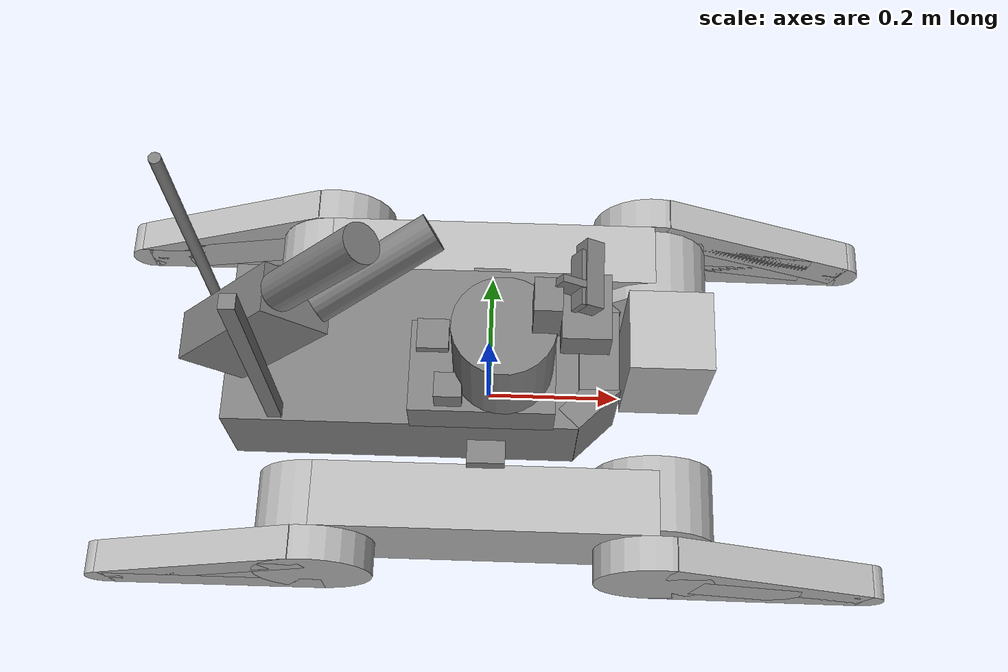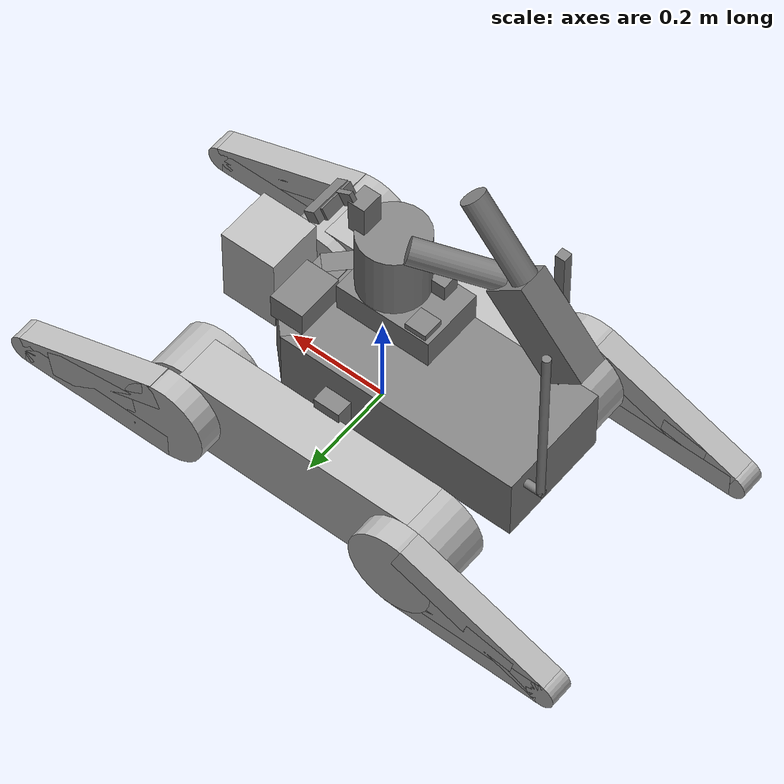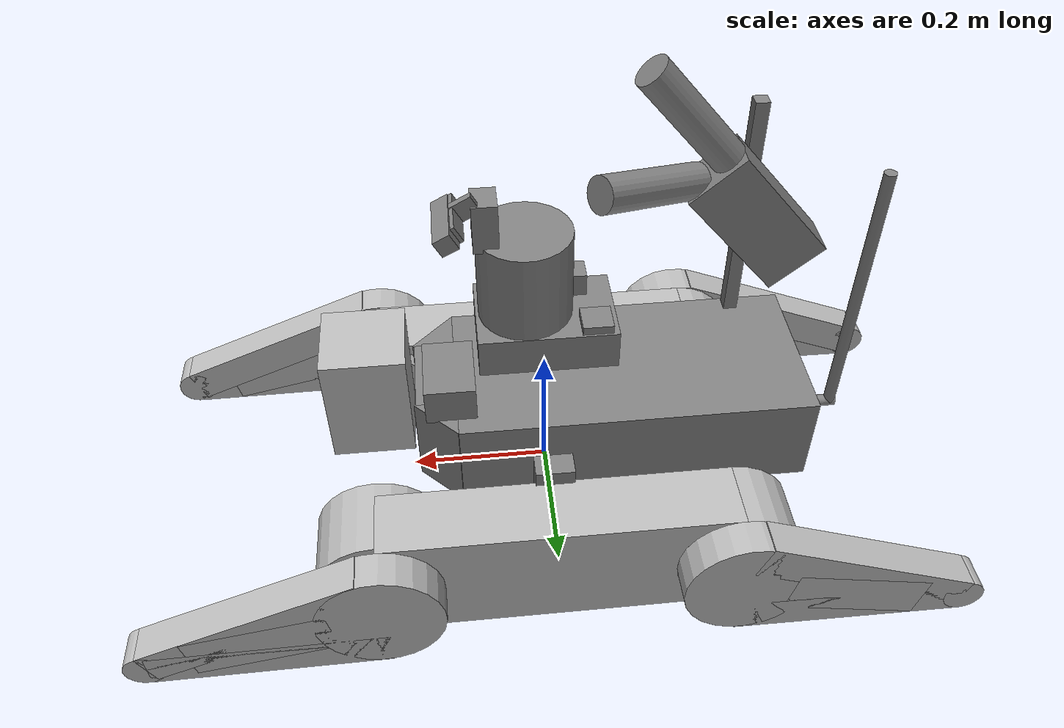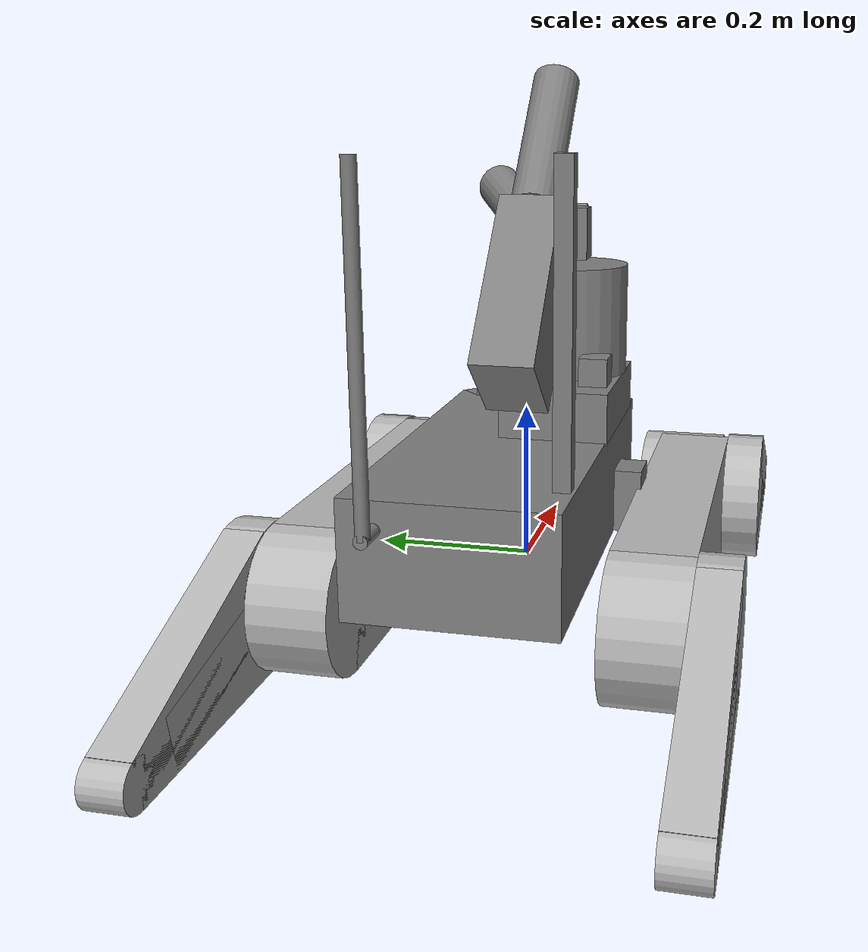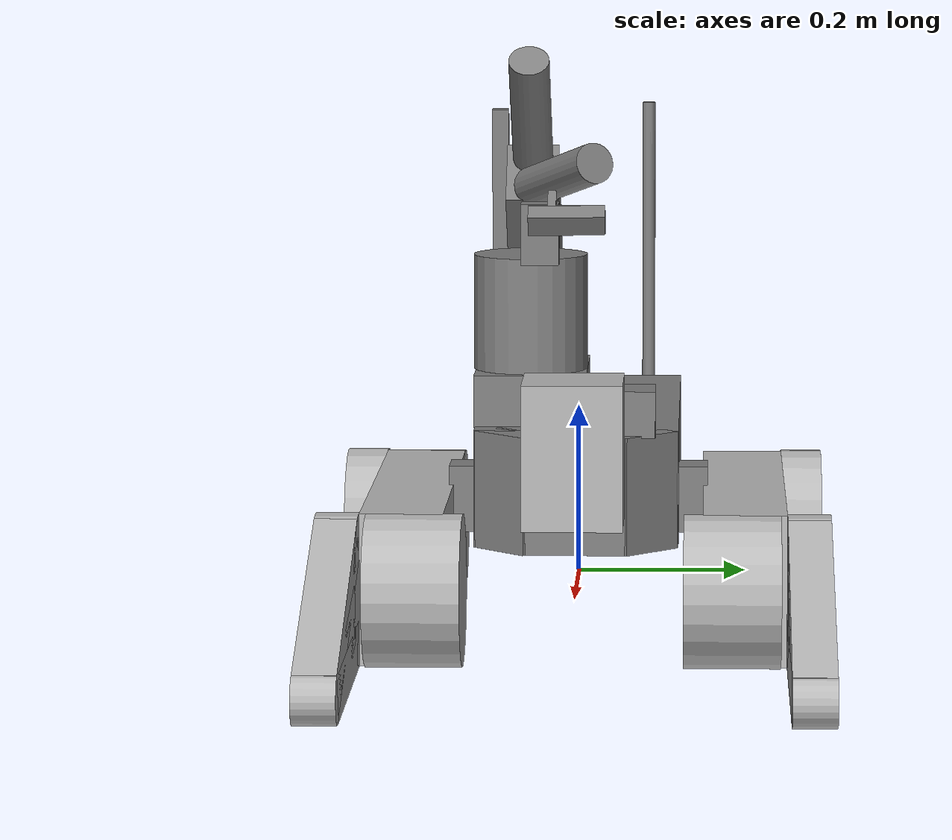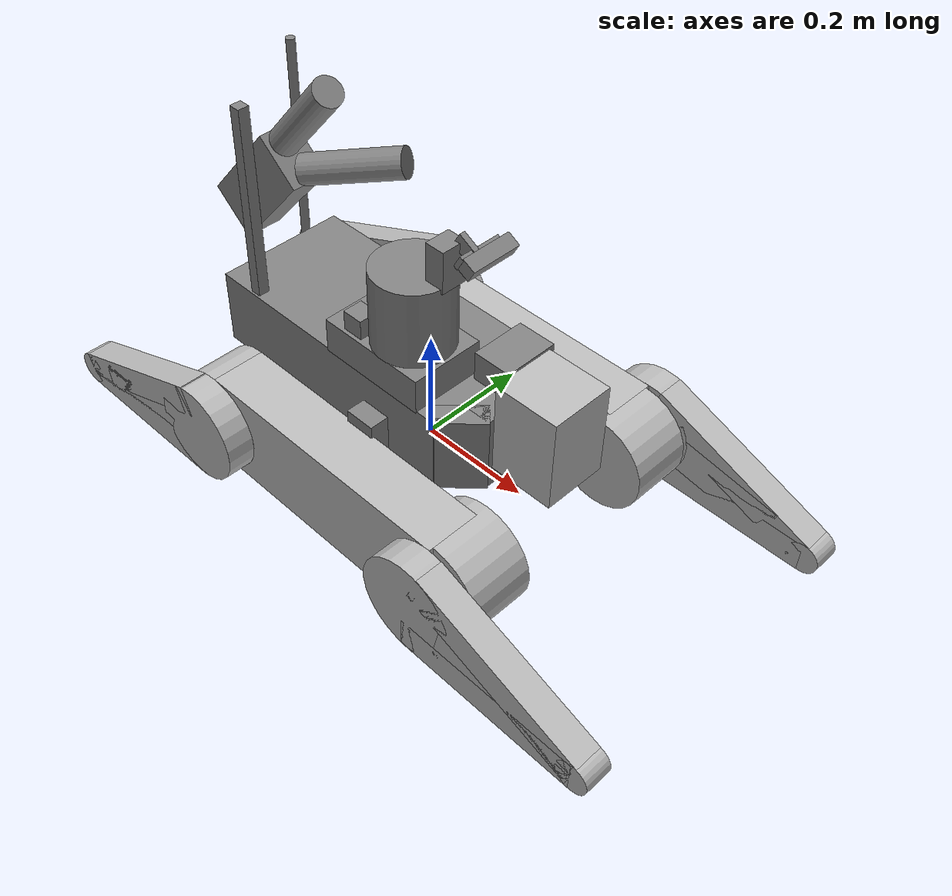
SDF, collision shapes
<?xml version='1.0' encoding='utf-8'?>
<sdf version="1.6">
    <model name="ctu_cras_norlab_absolem_sensor_config_1">
        <link name="base_link">
            <inertial>
                <pose>-0.062088 -0.006779 0.166362 0 -0 0</pose>
                <mass>22.4783</mass>
                <inertia>
                    <ixx>0.178253</ixx>
                    <ixy>0.0177326</ixy>
                    <ixz>-0.0781139</ixz>
                    <iyy>0.4196</iyy>
                    <iyz>0.0158494</iyz>
                    <izz>0.33554</izz>
                </inertia>
            </inertial>
            <collision name="base_link_collision">
                <pose>-0.122 0 0.118 0 -0 0</pose>
                <geometry>
                    <box>
                        <size>0.50017 0.24093 0.139</size>
                    </box>
                </geometry>
            </collision>
            <collision name="base_link_collision_1">
                <pose>0.157 0 0.118 0 -0 0</pose>
                <geometry>
                    <box>
                        <size>0.056 0.12093 0.139</size>
                    </box>
                </geometry>
            </collision>
            <collision name="base_link_collision_2">
                <pose>0.144 -0.076 0.118 0 -0 0.785398</pose>
                <geometry>
                    <box>
                        <size>0.083 0.04 0.139</size>
                    </box>
                </geometry>
            </collision>
            <collision name="base_link_collision_3">
                <pose>0.144 0.076 0.118 0 0 -0.785398</pose>
                <geometry>
                    <box>
                        <size>0.083 0.04 0.139</size>
                    </box>
                </geometry>
            </collision>
            <collision name="base_link_collision_4">
                <pose>0 0.135 0.09 0 -0 0</pose>
                <geometry>
                    <box>
                        <size>0.055 0.04 0.08</size>
                    </box>
                </geometry>
            </collision>
            <collision name="base_link_collision_5">
                <pose>0 0.155 0.013 0 -0 0</pose>
                <geometry>
                    <box>
                        <size>0.055 0.02 0.075</size>
                    </box>
                </geometry>
            </collision>
            <collision name="base_link_collision_6">
                <pose>0 -0.135 0.09 0 -0 0</pose>
                <geometry>
                    <box>
                        <size>0.055 0.04 0.08</size>
                    </box>
                </geometry>
            </collision>
            <collision name="base_link_collision_7">
                <pose>0 -0.155 0.013 0 -0 0</pose>
                <geometry>
                    <box>
                        <size>0.055 0.02 0.075</size>
                    </box>
                </geometry>
            </collision>
            <collision name="base_link_fixed_joint_lump__antenna_collision_8">
                <pose>-0.39064 0.0789 0.1551 0 1.5707963267948966 0</pose>
                <geometry>
                    <cylinder>
                        <length>0.03718</length>
                        <radius>0.008</radius>
                    </cylinder>
                </geometry>
            </collision>
            <collision name="base_link_fixed_joint_lump__antenna_collision_9">
                <pose>-0.402 0.0789 0.34563 0 -0 0</pose>
                <geometry>
                    <cylinder>
                        <length>0.38107</length>
                        <radius>0.008</radius>
                    </cylinder>
                </geometry>
            </collision>
            <collision name="base_link_fixed_joint_lump__battery_collision_10">
                <pose>-0.2836 -0.0221 0.1132 0 -0 0</pose>
                <geometry>
                    <box>
                        <size>0.145 0.135 0.082</size>
                    </box>
                </geometry>
            </collision>
            <collision name="base_link_fixed_joint_lump__jetson_collision_11">
                <pose>0.136 0.0435 0.2125 0 -0 0</pose>
                <geometry>
                    <box>
                        <size>0.07 0.1 0.055</size>
                    </box>
                </geometry>
            </collision>
            <collision name="base_link_fixed_joint_lump__rear_sensor_item_collision_12">
                <pose>-0.295 -0.1065 0.36 0 -0 0</pose>
                <geometry>
                    <box>
                        <size>0.02 0.02 0.35</size>
                    </box>
                </geometry>
            </collision>
            <collision name="base_link_fixed_joint_lump__mobilicom_collision_13">
                <pose>-0.295121 -0.064 0.385106 -1.56579 -0.858407 -7.3e-05</pose>
                <geometry>
                    <box>
                        <size>0.2 0.095 0.065</size>
                    </box>
                </geometry>
            </collision>
            <collision name="base_link_fixed_joint_lump__mobilicom_antenna_l_collision_14">
                <pose>-0.139117 -0.02338 0.465445 -1.29704 -0.418237 -1.17028</pose>
                <geometry>
                    <cylinder>
                        <length>0.17</length>
                        <radius>0.025</radius>
                    </cylinder>
                </geometry>
            </collision>
            <collision name="base_link_fixed_joint_lump__mobilicom_antenna_r_collision_15">
                <pose>-0.193116 -0.064558 0.541453 -0.7124 0.007057 -1.5707963267948966</pose>
                <geometry>
                    <cylinder>
                        <length>0.17</length>
                        <radius>0.025</radius>
                    </cylinder>
                </geometry>
            </collision>
            <collision name="base_link_fixed_joint_lump__top_box_collision_16">
                <pose>-0.007 -0.0557 0.2165 0 -0 0</pose>
                <geometry>
                    <box>
                        <size>0.2 0.133 0.06252</size>
                    </box>
                </geometry>
            </collision>
            <collision name="base_link_fixed_joint_lump__top_box_collision_17">
                <pose>-0.07624 -0.01443 0.254 0 -0 0</pose>
                <geometry>
                    <box>
                        <size>0.044 0.044 0.01303</size>
                    </box>
                </geometry>
            </collision>
            <collision name="base_link_fixed_joint_lump__top_box_collision_18">
                <pose>-0.05183 -0.09792 0.26496 0 -0 0</pose>
                <geometry>
                    <box>
                        <size>0.03732 0.03523 0.03489</size>
                    </box>
                </geometry>
            </collision>
            <collision name="base_link_fixed_joint_lump__omnicam_collision_19">
                <pose>0.020991 -0.05685 0.3172 0 0 -0.628319</pose>
                <geometry>
                    <cylinder>
                        <length>0.137</length>
                        <radius>0.068</radius>
                    </cylinder>
                </geometry>
            </collision>
            <collision name="base_link_fixed_joint_lump__realsense_holder_part2_collision_20">
                <pose>0.111811 -0.018928 0.440133 0 0.504467 -0.000319</pose>
                <geometry>
                    <box>
                        <size>0.008 0.075 0.025</size>
                    </box>
                </geometry>
            </collision>
            <collision name="base_link_fixed_joint_lump__realsense_holder_part2_collision_21">
                <pose>0.099551 -0.028924 0.4469 0 0.504467 -0.000319</pose>
                <geometry>
                    <box>
                        <size>0.035 0.01 0.028</size>
                    </box>
                </geometry>
            </collision>
            <collision name="base_link_fixed_joint_lump__realsense_holder_part2_collision_22">
                <pose>0.074085 -0.043916 0.415266 -0 0.004467 -0.000319</pose>
                <geometry>
                    <box>
                        <size>0.035 0.045 0.073</size>
                    </box>
                </geometry>
            </collision>
            <collision name="base_link_fixed_joint_lump__camera_link_collision_23">
                <pose>0.125348 -0.010971 0.43571 0.015 0.499467 -0.000319</pose>
                <geometry>
                    <box>
                        <size>0.02505 0.09 0.025</size>
                    </box>
                </geometry>
            </collision>
            <visual name="base_link_visual">
                <geometry>
                    <mesh>
                        <uri>meshes/body.dae</uri>
                    </mesh>
                </geometry>
            </visual>
            <visual name="base_link_fixed_joint_lump__antenna_visual_1">
                <pose>-0.372 0.0789 0.1551 0 -0 0</pose>
                <geometry>
                    <mesh>
                        <uri>meshes/antenna.dae</uri>
                    </mesh>
                </geometry>
            </visual>
            <visual name="base_link_fixed_joint_lump__battery_visual_2">
                <pose>-0.2836 -0.0221 0.0722 0 -0 0</pose>
                <geometry>
                    <mesh>
                        <uri>meshes/battery.dae</uri>
                    </mesh>
                </geometry>
            </visual>
            <visual name="base_link_fixed_joint_lump__jetson_visual_3">
                <pose>0.136 0.0435 0.2125 0 -0 0</pose>
                <geometry>
                    <box>
                        <size>0.07 0.1 0.055</size>
                    </box>
                </geometry>
            </visual>
            <visual name="base_link_fixed_joint_lump__rear_sensor_item_visual_4">
                <pose>-0.295 -0.1065 0.36 0 -0 0</pose>
                <geometry>
                    <box>
                        <size>0.02 0.02 0.35</size>
                    </box>
                </geometry>
            </visual>
            <visual name="base_link_fixed_joint_lump__mobilicom_visual_5">
                <pose>-0.275459 -0.078002 0.407765 -1.56579 -0.858407 -7.3e-05</pose>
                <geometry>
                    <box>
                        <size>0.12 0.075 0.037</size>
                    </box>
                </geometry>
            </visual>
            <visual name="base_link_fixed_joint_lump__mobilicom_antenna_l_visual_6">
                <pose>-0.139117 -0.02338 0.465445 -1.29704 -0.418237 -1.17028</pose>
                <geometry>
                    <cylinder>
                        <length>0.17</length>
                        <radius>0.015</radius>
                    </cylinder>
                </geometry>
            </visual>
            <visual name="base_link_fixed_joint_lump__mobilicom_antenna_r_visual_7">
                <pose>-0.193116 -0.064558 0.541453 -0.7124 0.007057 -1.5707963267948966</pose>
                <geometry>
                    <cylinder>
                        <length>0.17</length>
                        <radius>0.015</radius>
                    </cylinder>
                </geometry>
            </visual>
            <visual name="base_link_fixed_joint_lump__top_box_visual_8">
                <pose>0.022 -0.0557 0.185 0 -0 0</pose>
                <geometry>
                    <mesh>
                        <uri>meshes/top_box.dae</uri>
                    </mesh>
                </geometry>
            </visual>
            <visual name="base_link_fixed_joint_lump__omnicam_visual_9">
                <pose>0.0243 -0.0574 0.3142 0 0 -0.628319</pose>
                <geometry>
                    <mesh>
                        <uri>meshes/omnicam.dae</uri>
                    </mesh>
                </geometry>
            </visual>
            <visual name="base_link_fixed_joint_lump__realsense_holder_part2_visual_10">
                <pose>0.088136 -0.07392 0.386942 -5e-06 -0.002418 1.57486</pose>
                <geometry>
                    <mesh>
                        <scale>0.001 0.001 0.001</scale>
                        <uri>meshes/d435_holder_combined.stl</uri>
                    </mesh>
                </geometry>
                <material>
                    <diffuse>0.5 0.5 0.5 1</diffuse>
                    <ambient>0.1 0.1 0.1 1</ambient>
                </material>
            </visual>
            <visual name="base_link_fixed_joint_lump__camera_link_visual_11">
                <pose>0.133719 -0.010853 0.422031 2.07031 -0.013167 1.56329</pose>
                <geometry>
                    <mesh>
                        <uri>meshes/realsense_d435.dae</uri>
                    </mesh>
                </geometry>
                <material>
                    <diffuse>0.5 0.5 0.5 1</diffuse>
                    <ambient>0.1 0.1 0.1 1</ambient>
                </material>
            </visual>
            <light name="light_left" type="spot">
                <pose>0 0.13 0.2 1.5707963267948966 1.5707963267948966 0</pose>
                <attenuation>
                    <range>50</range>
                    <linear>0</linear>
                    <constant>0.1</constant>
                    <quadratic>0.0025</quadratic>
                </attenuation>
                <diffuse>0.8 0.8 0.5 1</diffuse>
                <specular>0.8 0.8 0.5 1</specular>
                <spot>
                    <inner_angle>2.8</inner_angle>
                    <outer_angle>2.9</outer_angle>
                    <falloff>1</falloff>
                </spot>
                <direction>1 0 0</direction>
            </light>
            <light name="light_right" type="spot">
                <pose>0 -0.13 0.2 -1.5707963267948966 1.5707963267948966 0</pose>
                <attenuation>
                    <range>50</range>
                    <linear>0</linear>
                    <constant>0.1</constant>
                    <quadratic>0.0025</quadratic>
                </attenuation>
                <diffuse>0.8 0.8 0.5 1</diffuse>
                <specular>0.8 0.8 0.5 1</specular>
                <spot>
                    <inner_angle>2.8</inner_angle>
                    <outer_angle>2.9</outer_angle>
                    <falloff>1</falloff>
                </spot>
                <direction>1 0 0</direction>
            </light>
            <light name="light_front_left" type="spot">
                <pose>0.3 0.13 0.2 2.74889 1.5707963267948966 0</pose>
                <attenuation>
                    <range>30</range>
                    <linear>0</linear>
                    <constant>0.2</constant>
                    <quadratic>0.0025</quadratic>
                </attenuation>
                <diffuse>0.8 0.8 0.5 1</diffuse>
                <specular>0.8 0.8 0.5 1</specular>
                <spot>
                    <inner_angle>1.5</inner_angle>
                    <outer_angle>1.6</outer_angle>
                    <falloff>1</falloff>
                </spot>
                <direction>1 0 0</direction>
            </light>
            <light name="light_front_right" type="spot">
                <pose>0.3 -0.13 0.2 -2.74889 1.5707963267948966 0</pose>
                <attenuation>
                    <range>30</range>
                    <linear>0</linear>
                    <constant>0.2</constant>
                    <quadratic>0.0025</quadratic>
                </attenuation>
                <diffuse>0.8 0.8 0.5 1</diffuse>
                <specular>0.8 0.8 0.5 1</specular>
                <spot>
                    <inner_angle>1.5</inner_angle>
                    <outer_angle>1.6</outer_angle>
                    <falloff>1</falloff>
                </spot>
                <direction>1 0 0</direction>
            </light>
            <light name="light_rear" type="spot">
                <pose>-0.4 0 0.2 0 1.5707963267948966 0</pose>
                <attenuation>
                    <range>30</range>
                    <linear>0</linear>
                    <constant>0.2</constant>
                    <quadratic>0.0025</quadratic>
                </attenuation>
                <diffuse>0.8 0.8 0.5 1</diffuse>
                <specular>0.8 0.8 0.5 1</specular>
                <spot>
                    <inner_angle>1.5</inner_angle>
                    <outer_angle>1.8</outer_angle>
                    <falloff>1</falloff>
                </spot>
                <direction>1 0 0</direction>
            </light>
            <self_collide>0</self_collide>
            <sensor name="imu" type="imu">
                <always_on>1</always_on>
                <update_rate>50</update_rate>
                <imu>
                    <angular_velocity>
                        <x>
                            <noise type="gaussian">
                                <mean>0</mean>
                                <stddev>0.009</stddev>
                                <bias_mean>0.00075</bias_mean>
                                <bias_stddev>0.005</bias_stddev>
                                <dynamic_bias_stddev>2e-05</dynamic_bias_stddev>
                                <dynamic_bias_correlation_time>400</dynamic_bias_correlation_time>
                                <precision>0.00025</precision>
                            </noise>
                        </x>
                        <y>
                            <noise type="gaussian">
                                <mean>0</mean>
                                <stddev>0.009</stddev>
                                <bias_mean>0.00075</bias_mean>
                                <bias_stddev>0.005</bias_stddev>
                                <dynamic_bias_stddev>2e-05</dynamic_bias_stddev>
                                <dynamic_bias_correlation_time>400</dynamic_bias_correlation_time>
                                <precision>0.00025</precision>
                            </noise>
                        </y>
                        <z>
                            <noise type="gaussian">
                                <mean>0</mean>
                                <stddev>0.009</stddev>
                                <bias_mean>0.00075</bias_mean>
                                <bias_stddev>0.005</bias_stddev>
                                <dynamic_bias_stddev>2e-05</dynamic_bias_stddev>
                                <dynamic_bias_correlation_time>400</dynamic_bias_correlation_time>
                                <precision>0.00025</precision>
                            </noise>
                        </z>
                    </angular_velocity>
                    <linear_acceleration>
                        <x>
                            <noise type="gaussian">
                                <mean>0</mean>
                                <stddev>0.021</stddev>
                                <bias_mean>0.05</bias_mean>
                                <bias_stddev>0.0075</bias_stddev>
                                <dynamic_bias_stddev>0.000375</dynamic_bias_stddev>
                                <dynamic_bias_correlation_time>175</dynamic_bias_correlation_time>
                                <precision>0.005</precision>
                            </noise>
                        </x>
                        <y>
                            <noise type="gaussian">
                                <mean>0</mean>
                                <stddev>0.021</stddev>
                                <bias_mean>0.05</bias_mean>
                                <bias_stddev>0.0075</bias_stddev>
                                <dynamic_bias_stddev>0.000375</dynamic_bias_stddev>
                                <dynamic_bias_correlation_time>175</dynamic_bias_correlation_time>
                                <precision>0.005</precision>
                            </noise>
                        </y>
                        <z>
                            <noise type="gaussian">
                                <mean>0</mean>
                                <stddev>0.021</stddev>
                                <bias_mean>0.05</bias_mean>
                                <bias_stddev>0.0075</bias_stddev>
                                <dynamic_bias_stddev>0.000375</dynamic_bias_stddev>
                                <dynamic_bias_correlation_time>175</dynamic_bias_correlation_time>
                                <precision>0.005</precision>
                            </noise>
                        </z>
                    </linear_acceleration>
                    <enable_orientation>0</enable_orientation>
                </imu>
                <pose>0 0 0.15 -3.1415926535897931 -0 0</pose>
            </sensor>
            <sensor name="omnicam_sensor0" type="camera">
                <update_rate>6</update_rate>
                <camera name="camera_0">
                    <horizontal_fov>1.36478</horizontal_fov>
                    <image>
                        <width>1232</width>
                        <height>1616</height>
                        <format>R8G8B8</format>
                    </image>
                    <clip>
                        <near>0.02</near>
                        <far>300</far>
                    </clip>
                    <noise>
                        <type>gaussian</type>
                        <mean>0</mean>
                        <stddev>0.007</stddev>
                    </noise>
                    <distortion>
                        <k1>-0.20571</k1>
                        <k2>0.04103</k2>
                        <k3>0</k3>
                        <p1>-0.00101</p1>
                        <p2>0.00098</p2>
                    </distortion>
                    <lens>
                        <intrinsics>
                            <fx>758.04</fx>
                            <fy>761.624</fy>
                            <cx>621.466</cx>
                            <cy>756.864</cy>
                            <s>1</s>
                        </intrinsics>
                        <type>stereographic</type>
                        <scale_to_hfov>1</scale_to_hfov>
                    </lens>
                </camera>
                <pose>0.057346 -0.083518 0.313841 -0.000948 -0.000784 -2.19802</pose>
            </sensor>
            <sensor name="omnicam_sensor1" type="camera">
                <update_rate>6</update_rate>
                <camera name="camera_1">
                    <horizontal_fov>1.36574</horizontal_fov>
                    <image>
                        <width>1232</width>
                        <height>1616</height>
                        <format>R8G8B8</format>
                    </image>
                    <clip>
                        <near>0.02</near>
                        <far>300</far>
                    </clip>
                    <noise>
                        <type>gaussian</type>
                        <mean>0</mean>
                        <stddev>0.007</stddev>
                    </noise>
                    <distortion>
                        <k1>-0.19931</k1>
                        <k2>0.03549</k2>
                        <k3>0</k3>
                        <p1>5e-05</p1>
                        <p2>-0.00053</p2>
                    </distortion>
                    <lens>
                        <intrinsics>
                            <fx>757.299</fx>
                            <fy>757.801</fy>
                            <cx>594.19</cx>
                            <cy>779.434</cy>
                            <s>1</s>
                        </intrinsics>
                        <type>stereographic</type>
                        <scale_to_hfov>1</scale_to_hfov>
                    </lens>
                </camera>
                <pose>0.009992 -0.096606 0.314114 -0.001069 0.000853 2.82791</pose>
            </sensor>
            <sensor name="omnicam_sensor2" type="camera">
                <update_rate>6</update_rate>
                <camera name="camera_2">
                    <horizontal_fov>1.36565</horizontal_fov>
                    <image>
                        <width>1232</width>
                        <height>1616</height>
                        <format>R8G8B8</format>
                    </image>
                    <clip>
                        <near>0.02</near>
                        <far>300</far>
                    </clip>
                    <noise>
                        <type>gaussian</type>
                        <mean>0</mean>
                        <stddev>0.007</stddev>
                    </noise>
                    <distortion>
                        <k1>-0.19722</k1>
                        <k2>0.03442</k2>
                        <k3>0</k3>
                        <p1>0.00013</p1>
                        <p2>-0.00035</p2>
                    </distortion>
                    <lens>
                        <intrinsics>
                            <fx>757.367</fx>
                            <fy>755.079</fy>
                            <cx>632.96</cx>
                            <cy>740.558</cy>
                            <s>1</s>
                        </intrinsics>
                        <type>stereographic</type>
                        <scale_to_hfov>1</scale_to_hfov>
                    </lens>
                </camera>
                <pose>-0.01735 -0.055429 0.314721 -0.001705 0.00415 1.56975</pose>
            </sensor>
            <sensor name="omnicam_sensor3" type="camera">
                <update_rate>6</update_rate>
                <camera name="camera_3">
                    <horizontal_fov>1.35821</horizontal_fov>
                    <image>
                        <width>1232</width>
                        <height>1616</height>
                        <format>R8G8B8</format>
                    </image>
                    <clip>
                        <near>0.02</near>
                        <far>300</far>
                    </clip>
                    <noise>
                        <type>gaussian</type>
                        <mean>0</mean>
                        <stddev>0.007</stddev>
                    </noise>
                    <distortion>
                        <k1>-0.20395</k1>
                        <k2>0.03534</k2>
                        <k3>0</k3>
                        <p1>0.0003</p1>
                        <p2>-0.00066</p2>
                    </distortion>
                    <lens>
                        <intrinsics>
                            <fx>763.152</fx>
                            <fy>763.185</fy>
                            <cx>606.706</cx>
                            <cy>785.217</cy>
                            <s>1</s>
                        </intrinsics>
                        <type>stereographic</type>
                        <scale_to_hfov>1</scale_to_hfov>
                    </lens>
                </camera>
                <pose>0.012561 -0.017068 0.314417 -0.000579 0.005611 0.313689</pose>
            </sensor>
            <sensor name="omnicam_sensor4" type="camera">
                <update_rate>6</update_rate>
                <camera name="camera_4">
                    <horizontal_fov>1.37789</horizontal_fov>
                    <image>
                        <width>1232</width>
                        <height>1616</height>
                        <format>R8G8B8</format>
                    </image>
                    <clip>
                        <near>0.02</near>
                        <far>300</far>
                    </clip>
                    <noise>
                        <type>gaussian</type>
                        <mean>0</mean>
                        <stddev>0.007</stddev>
                    </noise>
                    <distortion>
                        <k1>-0.19889</k1>
                        <k2>0.03244</k2>
                        <k3>0</k3>
                        <p1>-0.00039</p1>
                        <p2>-0.00126</p2>
                    </distortion>
                    <lens>
                        <intrinsics>
                            <fx>747.97</fx>
                            <fy>744.851</fy>
                            <cx>612.798</cx>
                            <cy>772.008</cy>
                            <s>1</s>
                        </intrinsics>
                        <type>stereographic</type>
                        <scale_to_hfov>1</scale_to_hfov>
                    </lens>
                </camera>
                <pose>0.058951 -0.03438 0.313899 -0.010815 0.001034 -0.943109</pose>
            </sensor>
            <sensor name="omnicam_sensor5" type="camera">
                <update_rate>6</update_rate>
                <camera name="camera_5">
                    <horizontal_fov>1.36869</horizontal_fov>
                    <image>
                        <width>1232</width>
                        <height>1616</height>
                        <format>R8G8B8</format>
                    </image>
                    <clip>
                        <near>0.02</near>
                        <far>300</far>
                    </clip>
                    <noise>
                        <type>gaussian</type>
                        <mean>0</mean>
                        <stddev>0.007</stddev>
                    </noise>
                    <distortion>
                        <k1>-0.21309</k1>
                        <k2>0.03984</k2>
                        <k3>0</k3>
                        <p1>-0.00011</p1>
                        <p2>-0.00017</p2>
                    </distortion>
                    <lens>
                        <intrinsics>
                            <fx>755.019</fx>
                            <fy>754.96</fy>
                            <cx>602.194</cx>
                            <cy>802.92</cy>
                            <s>1</s>
                        </intrinsics>
                        <type>stereographic</type>
                        <scale_to_hfov>1</scale_to_hfov>
                    </lens>
                </camera>
                <pose>0.024083 -0.058382 0.376328 3.1415926535897931 -1.5707963267948966 0.945143</pose>
            </sensor>
            <sensor name="camera" type="rgbd_camera">
                <camera name="camera_camera">
                    <horizontal_fov>1.5184</horizontal_fov>
                    <lens>
                        <intrinsics>
                            <fx>337.222</fx>
                            <fy>337.222</fy>
                            <cx>320.5</cx>
                            <cy>240.5</cy>
                            <s>0</s>
                        </intrinsics>
                        <type>stereographic</type>
                        <scale_to_hfov>1</scale_to_hfov>
                    </lens>
                    <distortion>
                        <k1>0</k1>
                        <k2>0</k2>
                        <k3>0</k3>
                        <p1>0</p1>
                        <p2>0</p2>
                        <center>0.5 0.5</center>
                    </distortion>
                    <image>
                        <width>640</width>
                        <height>480</height>
                        <format>RGB_INT8</format>
                    </image>
                    <clip>
                        <near>0.01</near>
                        <far>100</far>
                    </clip>
                    <depth_camera>
                        <clip>
                            <near>0.1</near>
                            <far>10</far>
                        </clip>
                        <output>depths</output>
                    </depth_camera>
                    <noise>
                        <type>gaussian</type>
                        <mean>0</mean>
                        <stddev>0.007</stddev>
                    </noise>
                </camera>
                <always_on>1</always_on>
                <update_rate>6</update_rate>
                <pose>0.13592 -0.016338 0.419596 0.015 0.499467 -0.000319</pose>
            </sensor>
        </link>
        <link name="laser">
            <pose>0.2502 0 0.1407 -3.1415926535897931 0 0</pose>
            <inertial>
                <pose>0 0 -0.04 0 -0 0</pose>
                <mass>1.1</mass>
                <inertia>
                    <ixx>0.0031194</ixx>
                    <ixy>-2.221e-06</ixy>
                    <ixz>-1.1577e-06</ixz>
                    <iyy>0.0031389</iyy>
                    <iyz>-1.153e-05</iyz>
                    <izz>0.0017656</izz>
                </inertia>
            </inertial>
            <collision name="laser_collision">
                <pose>0 0 -0.04 1.5707963267948966 0 -1.5707963267948966</pose>
                <geometry>
                    <box>
                        <size>0.1159 0.16826 0.1159</size>
                    </box>
                </geometry>
            </collision>
            <visual name="laser_visual">
                <pose>0 0 0 1.5707963267948966 0 -1.5707963267948966</pose>
                <geometry>
                    <mesh>
                        <uri>meshes/laser.dae</uri>
                    </mesh>
                </geometry>
            </visual>
            <sensor name="laser" type="gpu_lidar">
                <update_rate>50</update_rate>
                <always_on>1</always_on>
                <lidar>
                    <scan>
                        <horizontal>
                            <samples>541</samples>
                            <resolution>1</resolution>
                            <min_angle>-2.35619</min_angle>
                            <max_angle>2.35619</max_angle>
                        </horizontal>
                    </scan>
                    <range>
                        <min>0.2</min>
                        <max>50</max>
                        <resolution>0.01</resolution>
                    </range>
                    <noise>
                        <type>gaussian</type>
                        <mean>0</mean>
                        <stddev>0.01</stddev>
                    </noise>
                </lidar>
            </sensor>
        </link>
        <joint name="laser_j" type="revolute">
            <child>laser</child>
            <parent>base_link</parent>
            <axis>
                <xyz>1 0 0</xyz>
                <limit>
                    <lower>-2.35619</lower>
                    <upper>2.35619</upper>
                    <effort>10</effort>
                    <velocity>1.2</velocity>
                </limit>
                <dynamics>
                    <spring_reference>0</spring_reference>
                    <spring_stiffness>0</spring_stiffness>
                </dynamics>
                <use_parent_model_frame>0</use_parent_model_frame>
            </axis>
            <physics>
                <ode>
                    <implicit_spring_damper>1</implicit_spring_damper>
                    <cfm_damping>1</cfm_damping>
                    <limit>
                        <cfm>0</cfm>
                        <erp>0.2</erp>
                    </limit>
                </ode>
            </physics>
        </joint>
        <link name="left_track">
            <pose>0 0.1985 0 0 -0 0</pose>
            <inertial>
                <pose>0 0 0.0141 0 -0 0</pose>
                <mass>6.06</mass>
                <inertia>
                    <ixx>0.002731</ixx>
                    <ixy>0</ixy>
                    <ixz>0</ixz>
                    <iyy>0.032554</iyy>
                    <iyz>1.5e-05</iyz>
                    <izz>0.031391</izz>
                </inertia>
            </inertial>
            <collision name="left_track_collision">
                <pose>0 0 0.01855 1.5707963267948966 -0 1.5707963267948966</pose>
                <geometry>
                    <box>
                        <size>0.097 0.178 0.5</size>
                    </box>
                </geometry>
                <surface>
                    <friction>
                        <ode>
                            <mu>10</mu>
                            <mu2>150</mu2>
                            <fdir1>0 0 1</fdir1>
                        </ode>
                    </friction>
                </surface>
            </collision>
            <collision name="left_track_collision_1">
                <pose>0.25 -0.015 0.01855 1.5707963267948966 -0 0</pose>
                <geometry>
                    <cylinder>
                        <length>0.112</length>
                        <radius>0.089</radius>
                    </cylinder>
                </geometry>
                <surface>
                    <friction>
                        <ode>
                            <mu>10</mu>
                            <mu2>150</mu2>
                            <fdir1>0 0 1</fdir1>
                        </ode>
                    </friction>
                </surface>
            </collision>
            <collision name="left_track_collision_2">
                <pose>-0.25 0 0.01855 1.5707963267948966 -0 0</pose>
                <geometry>
                    <cylinder>
                        <length>0.097</length>
                        <radius>0.089</radius>
                    </cylinder>
                </geometry>
                <surface>
                    <friction>
                        <ode>
                            <mu>10</mu>
                            <mu2>150</mu2>
                            <fdir1>0 0 1</fdir1>
                        </ode>
                    </friction>
                </surface>
            </collision>
            <visual name="left_track_visual">
                <pose>0 0 -0.0705 1.5707963267948966 -0 1.5707963267948966</pose>
                <geometry>
                    <mesh>
                        <uri>meshes/bogie.dae</uri>
                    </mesh>
                </geometry>
            </visual>
        </link>
        <joint name="left_track_j" type="revolute">
            <child>left_track</child>
            <parent>base_link</parent>
            <axis>
                <xyz>0 1 0</xyz>
                <limit>
                    <lower>0</lower>
                    <upper>0</upper>
                    <effort>0</effort>
                    <velocity>4</velocity>
                </limit>
                <dynamics>
                    <spring_reference>0</spring_reference>
                    <spring_stiffness>0</spring_stiffness>
                </dynamics>
                <use_parent_model_frame>0</use_parent_model_frame>
            </axis>
            <physics>
                <ode>
                    <limit>
                        <cfm>0</cfm>
                        <erp>0.2</erp>
                    </limit>
                </ode>
            </physics>
            <physics>
                <ode>
                    <implicit_spring_damper>1</implicit_spring_damper>
                    <cfm>0</cfm>
                    <erp>0.95</erp>
                </ode>
            </physics>
        </joint>
        <link name="front_left_flipper">
            <pose>0.25 0.272 0.0195 0 0.193732 0</pose>
            <inertial>
                <pose>0.08 0 0 0 -0 0</pose>
                <mass>0.75</mass>
                <inertia>
                    <ixx>0.0017491</ixx>
                    <ixy>2.8512e-07</ixy>
                    <ixz>0.0018277</ixz>
                    <iyy>0.012277</iyy>
                    <iyz>-3.6288e-07</iyz>
                    <izz>0.010941</izz>
                </inertia>
            </inertial>
            <collision name="front_left_flipper_collision_large_wheel_collision">
                <pose>0 0 0 1.5707963267948966 -0 0</pose>
                <geometry>
                    <cylinder>
                        <length>0.04981</length>
                        <radius>0.089</radius>
                    </cylinder>
                </geometry>
                <surface>
                    <friction>
                        <ode>
                            <mu>10</mu>
                            <mu2>150</mu2>
                            <fdir1>0 0 1</fdir1>
                        </ode>
                    </friction>
                </surface>
            </collision>
            <collision name="front_left_flipper_collision_small_wheel_collision_1">
                <pose>0.33 0 0 1.5707963267948966 -0 0</pose>
                <geometry>
                    <cylinder>
                        <length>0.04981</length>
                        <radius>0.029</radius>
                    </cylinder>
                </geometry>
                <surface>
                    <friction>
                        <ode>
                            <mu>10</mu>
                            <mu2>150</mu2>
                            <fdir1>0 0 1</fdir1>
                        </ode>
                    </friction>
                </surface>
            </collision>
            <collision name="front_left_flipper_collision_top_bar_collision_2">
                <pose>0.165 0 0.0325 0 0.184162 0</pose>
                <geometry>
                    <box>
                        <size>0.33 0.04981 0.055</size>
                    </box>
                </geometry>
                <surface>
                    <friction>
                        <ode>
                            <mu>10</mu>
                            <mu2>150</mu2>
                            <fdir1>0 0 1</fdir1>
                        </ode>
                    </friction>
                </surface>
            </collision>
            <collision name="front_left_flipper_collision_bottom_bar_collision_3">
                <pose>0.165 0 -0.0325 0 -0.184162 0</pose>
                <geometry>
                    <box>
                        <size>0.33 0.04981 0.055</size>
                    </box>
                </geometry>
                <surface>
                    <friction>
                        <ode>
                            <mu>10</mu>
                            <mu2>150</mu2>
                            <fdir1>0 0 1</fdir1>
                        </ode>
                    </friction>
                </surface>
            </collision>
            <collision name="front_left_flipper_collision_middle_bar_collision_4">
                <pose>0.166 0 0.004 0 -0.02 0</pose>
                <geometry>
                    <box>
                        <size>0.2 0.04981 0.07</size>
                    </box>
                </geometry>
                <surface>
                    <friction>
                        <ode>
                            <mu>10</mu>
                            <mu2>150</mu2>
                            <fdir1>0 0 1</fdir1>
                        </ode>
                    </friction>
                </surface>
            </collision>
            <visual name="front_left_flipper_visual">
                <pose>0 0 0 -2.95743 -0 1.5707963267948966</pose>
                <geometry>
                    <mesh>
                        <uri>meshes/flipper.dae</uri>
                    </mesh>
                </geometry>
            </visual>
        </link>
        <joint name="front_left_flipper_j" type="revolute">
            <child>front_left_flipper</child>
            <parent>left_track</parent>
            <axis>
                <xyz>0 1 0</xyz>
                <limit>
                    <lower>-1e+16</lower>
                    <upper>1e+16</upper>
                    <effort>20</effort>
                    <velocity>0.785398</velocity>
                </limit>
                <dynamics>
                    <spring_reference>0</spring_reference>
                    <spring_stiffness>0</spring_stiffness>
                </dynamics>
                <use_parent_model_frame>0</use_parent_model_frame>
            </axis>
            <physics>
                <ode>
                    <implicit_spring_damper>1</implicit_spring_damper>
                    <cfm_damping>1</cfm_damping>
                    <limit>
                        <cfm>0</cfm>
                        <erp>0.2</erp>
                    </limit>
                </ode>
            </physics>
        </joint>
        <link name="rear_left_flipper">
            <pose>-0.25 0.272 0.0195 3.1415926535897931 0.193732 3.1415926535897931</pose>
            <inertial>
                <pose>0.08 0 0 0 -0 0</pose>
                <mass>0.75</mass>
                <inertia>
                    <ixx>0.0017491</ixx>
                    <ixy>2.8512e-07</ixy>
                    <ixz>0.0018277</ixz>
                    <iyy>0.012277</iyy>
                    <iyz>-3.6288e-07</iyz>
                    <izz>0.010941</izz>
                </inertia>
            </inertial>
            <collision name="rear_left_flipper_collision_large_wheel_collision">
                <pose>0 0 0 1.5707963267948966 -0 0</pose>
                <geometry>
                    <cylinder>
                        <length>0.04981</length>
                        <radius>0.089</radius>
                    </cylinder>
                </geometry>
                <surface>
                    <friction>
                        <ode>
                            <mu>10</mu>
                            <mu2>150</mu2>
                            <fdir1>0 0 1</fdir1>
                        </ode>
                    </friction>
                </surface>
            </collision>
            <collision name="rear_left_flipper_collision_small_wheel_collision_1">
                <pose>0.33 0 0 1.5707963267948966 -0 0</pose>
                <geometry>
                    <cylinder>
                        <length>0.04981</length>
                        <radius>0.029</radius>
                    </cylinder>
                </geometry>
                <surface>
                    <friction>
                        <ode>
                            <mu>10</mu>
                            <mu2>150</mu2>
                            <fdir1>0 0 1</fdir1>
                        </ode>
                    </friction>
                </surface>
            </collision>
            <collision name="rear_left_flipper_collision_top_bar_collision_2">
                <pose>0.165 0 0.0325 0 0.184162 0</pose>
                <geometry>
                    <box>
                        <size>0.33 0.04981 0.055</size>
                    </box>
                </geometry>
                <surface>
                    <friction>
                        <ode>
                            <mu>10</mu>
                            <mu2>150</mu2>
                            <fdir1>0 0 1</fdir1>
                        </ode>
                    </friction>
                </surface>
            </collision>
            <collision name="rear_left_flipper_collision_bottom_bar_collision_3">
                <pose>0.165 0 -0.0325 0 -0.184162 0</pose>
                <geometry>
                    <box>
                        <size>0.33 0.04981 0.055</size>
                    </box>
                </geometry>
                <surface>
                    <friction>
                        <ode>
                            <mu>10</mu>
                            <mu2>150</mu2>
                            <fdir1>0 0 1</fdir1>
                        </ode>
                    </friction>
                </surface>
            </collision>
            <collision name="rear_left_flipper_collision_middle_bar_collision_4">
                <pose>0.166 0 0.004 0 -0.02 0</pose>
                <geometry>
                    <box>
                        <size>0.2 0.04981 0.07</size>
                    </box>
                </geometry>
                <surface>
                    <friction>
                        <ode>
                            <mu>10</mu>
                            <mu2>150</mu2>
                            <fdir1>0 0 1</fdir1>
                        </ode>
                    </friction>
                </surface>
            </collision>
            <visual name="rear_left_flipper_visual">
                <pose>0 0 0 -2.95743 -0 1.5707963267948966</pose>
                <geometry>
                    <mesh>
                        <uri>meshes/flipper.dae</uri>
                    </mesh>
                </geometry>
            </visual>
        </link>
        <joint name="rear_left_flipper_j" type="revolute">
            <child>rear_left_flipper</child>
            <parent>left_track</parent>
            <axis>
                <xyz>0 1 0</xyz>
                <limit>
                    <lower>-1e+16</lower>
                    <upper>1e+16</upper>
                    <effort>20</effort>
                    <velocity>0.785398</velocity>
                </limit>
                <dynamics>
                    <spring_reference>0</spring_reference>
                    <spring_stiffness>0</spring_stiffness>
                </dynamics>
                <use_parent_model_frame>0</use_parent_model_frame>
            </axis>
            <physics>
                <ode>
                    <implicit_spring_damper>1</implicit_spring_damper>
                    <cfm_damping>1</cfm_damping>
                    <limit>
                        <cfm>0</cfm>
                        <erp>0.2</erp>
                    </limit>
                </ode>
            </physics>
        </joint>
        <link name="right_track">
            <pose>0 -0.1985 0 0 -0 0</pose>
            <inertial>
                <pose>0 0 0.0141 0 -0 0</pose>
                <mass>6.06</mass>
                <inertia>
                    <ixx>0.002731</ixx>
                    <ixy>0</ixy>
                    <ixz>0</ixz>
                    <iyy>0.032554</iyy>
                    <iyz>1.5e-05</iyz>
                    <izz>0.031391</izz>
                </inertia>
            </inertial>
            <collision name="right_track_collision">
                <pose>0 0 0.01855 1.5707963267948966 -0 1.5707963267948966</pose>
                <geometry>
                    <box>
                        <size>0.097 0.178 0.5</size>
                    </box>
                </geometry>
                <surface>
                    <friction>
                        <ode>
                            <mu>10</mu>
                            <mu2>150</mu2>
                            <fdir1>0 0 1</fdir1>
                        </ode>
                    </friction>
                </surface>
            </collision>
            <collision name="right_track_collision_1">
                <pose>0.25 0.015 0.01855 1.5707963267948966 -0 0</pose>
                <geometry>
                    <cylinder>
                        <length>0.112</length>
                        <radius>0.089</radius>
                    </cylinder>
                </geometry>
                <surface>
                    <friction>
                        <ode>
                            <mu>10</mu>
                            <mu2>150</mu2>
                            <fdir1>0 0 1</fdir1>
                        </ode>
                    </friction>
                </surface>
            </collision>
            <collision name="right_track_collision_2">
                <pose>-0.25 0 0.01855 1.5707963267948966 -0 0</pose>
                <geometry>
                    <cylinder>
                        <length>0.097</length>
                        <radius>0.089</radius>
                    </cylinder>
                </geometry>
                <surface>
                    <friction>
                        <ode>
                            <mu>10</mu>
                            <mu2>150</mu2>
                            <fdir1>0 0 1</fdir1>
                        </ode>
                    </friction>
                </surface>
            </collision>
            <visual name="right_track_visual">
                <pose>0 0 -0.0705 1.5707963267948966 0 -1.5707963267948966</pose>
                <geometry>
                    <mesh>
                        <uri>meshes/bogie.dae</uri>
                    </mesh>
                </geometry>
            </visual>
        </link>
        <joint name="right_track_j" type="revolute">
            <child>right_track</child>
            <parent>base_link</parent>
            <axis>
                <xyz>0 1 0</xyz>
                <limit>
                    <lower>0</lower>
                    <upper>0</upper>
                    <effort>0</effort>
                    <velocity>4</velocity>
                </limit>
                <dynamics>
                    <spring_reference>0</spring_reference>
                    <spring_stiffness>0</spring_stiffness>
                </dynamics>
                <use_parent_model_frame>0</use_parent_model_frame>
            </axis>
            <physics>
                <ode>
                    <limit>
                        <cfm>0</cfm>
                        <erp>0.2</erp>
                    </limit>
                </ode>
            </physics>
            <physics>
                <ode>
                    <implicit_spring_damper>1</implicit_spring_damper>
                    <cfm>0</cfm>
                    <erp>0.95</erp>
                </ode>
            </physics>
        </joint>
        <link name="front_right_flipper">
            <pose>0.25 -0.272 0.0195 3.1415926535897931 -0.193732 3.1415926535897931</pose>
            <inertial>
                <pose>-0.08 0 0 0 -0 0</pose>
                <mass>0.75</mass>
                <inertia>
                    <ixx>0.0017491</ixx>
                    <ixy>2.8512e-07</ixy>
                    <ixz>0.0018277</ixz>
                    <iyy>0.012277</iyy>
                    <iyz>-3.6288e-07</iyz>
                    <izz>0.010941</izz>
                </inertia>
            </inertial>
            <collision name="front_right_flipper_collision_large_wheel_collision">
                <pose>0 0 0 1.5707963267948966 -0 0</pose>
                <geometry>
                    <cylinder>
                        <length>0.04981</length>
                        <radius>0.089</radius>
                    </cylinder>
                </geometry>
                <surface>
                    <friction>
                        <ode>
                            <mu>10</mu>
                            <mu2>150</mu2>
                            <fdir1>0 0 1</fdir1>
                        </ode>
                    </friction>
                </surface>
            </collision>
            <collision name="front_right_flipper_collision_small_wheel_collision_1">
                <pose>-0.33 0 0 1.5707963267948966 -0 0</pose>
                <geometry>
                    <cylinder>
                        <length>0.04981</length>
                        <radius>0.029</radius>
                    </cylinder>
                </geometry>
                <surface>
                    <friction>
                        <ode>
                            <mu>10</mu>
                            <mu2>150</mu2>
                            <fdir1>0 0 1</fdir1>
                        </ode>
                    </friction>
                </surface>
            </collision>
            <collision name="front_right_flipper_collision_top_bar_collision_2">
                <pose>-0.165 0 0.0325 0 0.184162 -3.1415926535897931</pose>
                <geometry>
                    <box>
                        <size>0.33 0.04981 0.055</size>
                    </box>
                </geometry>
                <surface>
                    <friction>
                        <ode>
                            <mu>10</mu>
                            <mu2>150</mu2>
                            <fdir1>0 0 1</fdir1>
                        </ode>
                    </friction>
                </surface>
            </collision>
            <collision name="front_right_flipper_collision_bottom_bar_collision_3">
                <pose>-0.165 0 -0.0325 0 -0.184162 -3.1415926535897931</pose>
                <geometry>
                    <box>
                        <size>0.33 0.04981 0.055</size>
                    </box>
                </geometry>
                <surface>
                    <friction>
                        <ode>
                            <mu>10</mu>
                            <mu2>150</mu2>
                            <fdir1>0 0 1</fdir1>
                        </ode>
                    </friction>
                </surface>
            </collision>
            <collision name="front_right_flipper_collision_middle_bar_collision_4">
                <pose>-0.166 0 0.004 0 -0.02 -3.1415926535897931</pose>
                <geometry>
                    <box>
                        <size>0.2 0.04981 0.07</size>
                    </box>
                </geometry>
                <surface>
                    <friction>
                        <ode>
                            <mu>10</mu>
                            <mu2>150</mu2>
                            <fdir1>0 0 1</fdir1>
                        </ode>
                    </friction>
                </surface>
            </collision>
            <visual name="front_right_flipper_visual">
                <pose>0 0 0 -2.95743 -0 -1.5707963267948966</pose>
                <geometry>
                    <mesh>
                        <uri>meshes/flipper.dae</uri>
                    </mesh>
                </geometry>
            </visual>
        </link>
        <joint name="front_right_flipper_j" type="revolute">
            <child>front_right_flipper</child>
            <parent>right_track</parent>
            <axis>
                <xyz>0 1 0</xyz>
                <limit>
                    <lower>-1e+16</lower>
                    <upper>1e+16</upper>
                    <effort>20</effort>
                    <velocity>0.785398</velocity>
                </limit>
                <dynamics>
                    <spring_reference>0</spring_reference>
                    <spring_stiffness>0</spring_stiffness>
                </dynamics>
                <use_parent_model_frame>0</use_parent_model_frame>
            </axis>
            <physics>
                <ode>
                    <implicit_spring_damper>1</implicit_spring_damper>
                    <cfm_damping>1</cfm_damping>
                    <limit>
                        <cfm>0</cfm>
                        <erp>0.2</erp>
                    </limit>
                </ode>
            </physics>
        </joint>
        <link name="rear_right_flipper">
            <pose>-0.25 -0.272 0.0195 0 -0.193732 0</pose>
            <inertial>
                <pose>-0.08 0 0 0 -0 0</pose>
                <mass>0.75</mass>
                <inertia>
                    <ixx>0.0017491</ixx>
                    <ixy>2.8512e-07</ixy>
                    <ixz>0.0018277</ixz>
                    <iyy>0.012277</iyy>
                    <iyz>-3.6288e-07</iyz>
                    <izz>0.010941</izz>
                </inertia>
            </inertial>
            <collision name="rear_right_flipper_collision_large_wheel_collision">
                <pose>0 0 0 1.5707963267948966 -0 0</pose>
                <geometry>
                    <cylinder>
                        <length>0.04981</length>
                        <radius>0.089</radius>
                    </cylinder>
                </geometry>
                <surface>
                    <friction>
                        <ode>
                            <mu>10</mu>
                            <mu2>150</mu2>
                            <fdir1>0 0 1</fdir1>
                        </ode>
                    </friction>
                </surface>
            </collision>
            <collision name="rear_right_flipper_collision_small_wheel_collision_1">
                <pose>-0.33 0 0 1.5707963267948966 -0 0</pose>
                <geometry>
                    <cylinder>
                        <length>0.04981</length>
                        <radius>0.029</radius>
                    </cylinder>
                </geometry>
                <surface>
                    <friction>
                        <ode>
                            <mu>10</mu>
                            <mu2>150</mu2>
                            <fdir1>0 0 1</fdir1>
                        </ode>
                    </friction>
                </surface>
            </collision>
            <collision name="rear_right_flipper_collision_top_bar_collision_2">
                <pose>-0.165 0 0.0325 0 0.184162 -3.1415926535897931</pose>
                <geometry>
                    <box>
                        <size>0.33 0.04981 0.055</size>
                    </box>
                </geometry>
                <surface>
                    <friction>
                        <ode>
                            <mu>10</mu>
                            <mu2>150</mu2>
                            <fdir1>0 0 1</fdir1>
                        </ode>
                    </friction>
                </surface>
            </collision>
            <collision name="rear_right_flipper_collision_bottom_bar_collision_3">
                <pose>-0.165 0 -0.0325 0 -0.184162 -3.1415926535897931</pose>
                <geometry>
                    <box>
                        <size>0.33 0.04981 0.055</size>
                    </box>
                </geometry>
                <surface>
                    <friction>
                        <ode>
                            <mu>10</mu>
                            <mu2>150</mu2>
                            <fdir1>0 0 1</fdir1>
                        </ode>
                    </friction>
                </surface>
            </collision>
            <collision name="rear_right_flipper_collision_middle_bar_collision_4">
                <pose>-0.166 0 0.004 0 -0.02 -3.1415926535897931</pose>
                <geometry>
                    <box>
                        <size>0.2 0.04981 0.07</size>
                    </box>
                </geometry>
                <surface>
                    <friction>
                        <ode>
                            <mu>10</mu>
                            <mu2>150</mu2>
                            <fdir1>0 0 1</fdir1>
                        </ode>
                    </friction>
                </surface>
            </collision>
            <visual name="rear_right_flipper_visual">
                <pose>0 0 0 -2.95743 -0 -1.5707963267948966</pose>
                <geometry>
                    <mesh>
                        <uri>meshes/flipper.dae</uri>
                    </mesh>
                </geometry>
            </visual>
        </link>
        <joint name="rear_right_flipper_j" type="revolute">
            <child>rear_right_flipper</child>
            <parent>right_track</parent>
            <axis>
                <xyz>0 1 0</xyz>
                <limit>
                    <lower>-1e+16</lower>
                    <upper>1e+16</upper>
                    <effort>20</effort>
                    <velocity>0.785398</velocity>
                </limit>
                <dynamics>
                    <spring_reference>0</spring_reference>
                    <spring_stiffness>0</spring_stiffness>
                </dynamics>
                <use_parent_model_frame>0</use_parent_model_frame>
            </axis>
            <physics>
                <ode>
                    <implicit_spring_damper>1</implicit_spring_damper>
                    <cfm_damping>1</cfm_damping>
                    <limit>
                        <cfm>0</cfm>
                        <erp>0.2</erp>
                    </limit>
                </ode>
            </physics>
        </joint>
        <plugin name="cras::FlipperControlPlugin" filename="libflipper_control_plugin.so">
            <joint_name>front_left_flipper_j</joint_name>
            <max_velocity>0.8</max_velocity>
        </plugin>
        <plugin name="cras::FlipperControlPlugin" filename="libflipper_control_plugin.so">
            <joint_name>front_right_flipper_j</joint_name>
            <max_velocity>0.8</max_velocity>
        </plugin>
        <plugin name="cras::FlipperControlPlugin" filename="libflipper_control_plugin.so">
            <joint_name>rear_left_flipper_j</joint_name>
            <max_velocity>0.8</max_velocity>
        </plugin>
        <plugin name="cras::FlipperControlPlugin" filename="libflipper_control_plugin.so">
            <joint_name>rear_right_flipper_j</joint_name>
            <max_velocity>0.8</max_velocity>
        </plugin>
        <plugin name="cras::LaserRotatePlugin" filename="liblaser_rotate_plugin.so">
            <joint_name>laser_j</joint_name>
            <initial_velocity>0.0</initial_velocity>
            <rotation_angular_limit>1.618994</rotation_angular_limit>
        </plugin>
        <plugin name="ignition::gazebo::systems::JointStatePublisher" filename="libignition-gazebo-joint-state-publisher-system.so">
            <joint_name>front_left_flipper_j</joint_name>
            <joint_name>front_right_flipper_j</joint_name>
            <joint_name>rear_left_flipper_j</joint_name>
            <joint_name>rear_right_flipper_j</joint_name>
            <joint_name>laser_j</joint_name>
        </plugin>
    </model>
</sdf>
